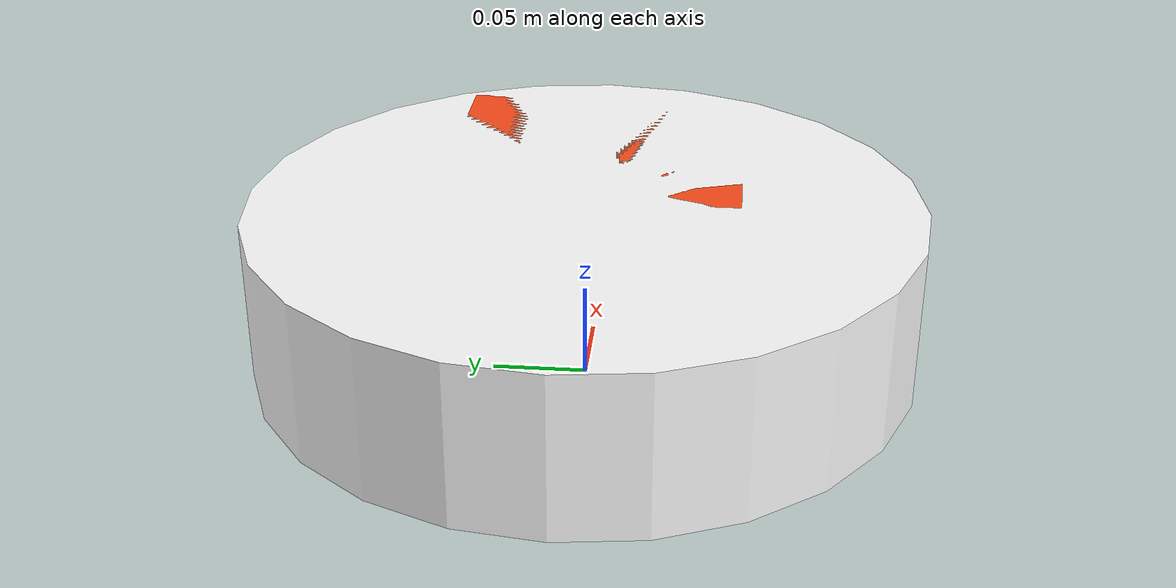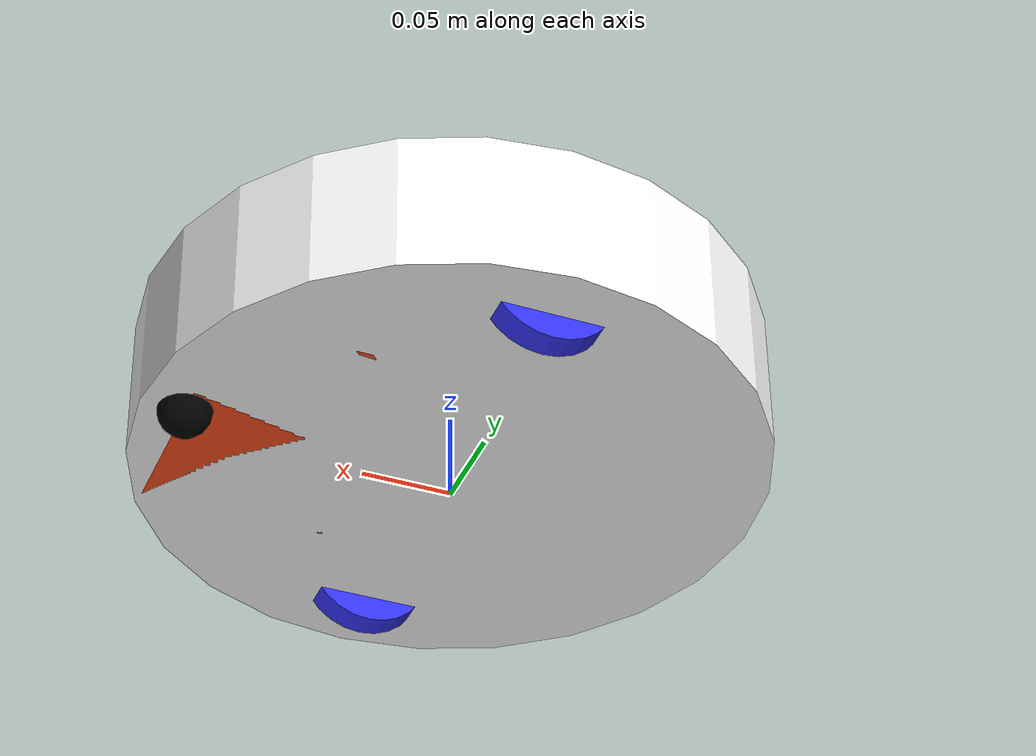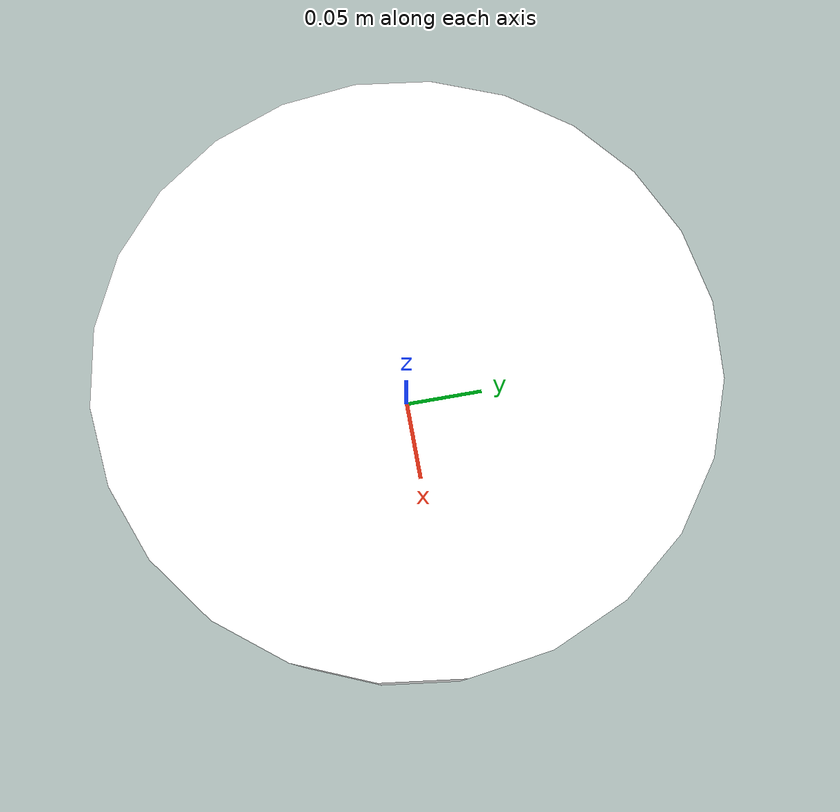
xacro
<?xml version="1.0"?>
<robot xmlns:xacro="http://www.ros.org/wiki/xacro" >

    <xacro:include filename="inertial_macros.xacro"/>

    <material name="white">
        <color rgba="1 1 1 1" />
    </material>
    <material name="orange">
        <color rgba="1 0.3 0.1 1" />
    </material>
    <material name="blue">
        <color rgba="0.2 0.2 1 1" />
    </material>
    <material name="black">
        <color rgba="0 0 0 1" />
    </material>
    <material name="red">
        <color rgba="1 0 0 1" />
    </material>

    <link name="base_footprint">
    </link>

    <!-- BASE  -->
    <joint name="base_joint" type="fixed">
        <parent link="base_footprint"/>
        <child link="base_link"/>
        <origin xyz="0 0 0.035" rpy="0 0 0"/>
    </joint>

    <link name="base_link">
    </link>

    <!-- CHASSIS ONE (CYLINDER) -->
    <joint name="chassis_one_joint" type="fixed">
        <parent link="base_link"/>
        <child link="chassis_one"/>
        <origin xyz="0 0 0.0225"/>
    </joint>

    <link name="chassis_one">
        <visual>
            <origin xyz="0 0 0"/>
            <geometry>
                <cylinder radius="0.175" length="0.085"/>
            </geometry>
            <material name="white"/>
        </visual>

        <collision>
            <origin xyz="0 0 0"/>
            <geometry>
                <cylinder radius="0.175" length="0.085"/>
            </geometry>
        </collision>

        <xacro:inertial_cylinder mass = "2.5" length="0.085" radius="0.175">
            <origin xyz="0 0 0" rpy="0 0 0"/>
        </xacro:inertial_cylinder>

    </link>

    <gazebo reference="chassis_one">
        <material>Gazebo/White</material>
    </gazebo>

    <!-- CHASSIS TWO (BOX) -->
    <joint name="chassis_two_joint" type="fixed">
        <parent link="base_link"/>
        <child link="chassis_two"/>
        <origin xyz="0 0 -0.02"/>
    </joint>

    <link name="chassis_two">
        <visual>
            <origin xyz="0.075 0 0.0425"/>
            <geometry>
                <box size="0.15 0.16 0.085"/>
            </geometry>
            <material name="orange"/>
        </visual>

        <collision>
            <origin xyz="0.075 0 0.0425"/>
            <geometry>
                <box size="0.15 0.16 0.085"/>
            </geometry>
        </collision>

        <xacro:inertial_box mass="1" x="0.15" y="0.16" z="0.085">
            <origin xyz="0.075 0 0.0425" rpy="0 0 0"/>
        </xacro:inertial_box>

    </link>

    <gazebo reference="chassis_two">
        <material>Gazebo/Orange</material>
    </gazebo>

    <!-- LEFT WHEEL -->
    <joint name="left_wheel_joint" type="continuous">
        <parent link="base_link"/>
        <child link="left_wheel"/>
        <origin xyz="0 0.1365 0" rpy="-${pi/2} 0 0"/>
        <axis xyz="0 0 1"/>
    </joint>

    <link name="left_wheel">
        <visual>
            <geometry>
                <cylinder radius="0.035" length="0.015"/>
            </geometry>
            <material name="blue"/>
        </visual>

        <collision>
            <geometry>
                <cylinder radius="0.035" length="0.015"/>
            </geometry>
        </collision>

        <xacro:inertial_cylinder mass = "0.1" length="0.015" radius="0.035">
            <origin xyz="0 0 0" rpy="0 0 0"/>
        </xacro:inertial_cylinder>

    </link>

    <gazebo reference="left_wheel">
        <material>Gazebo/Blue</material>
    </gazebo>

    <!-- RIGHT WHEEL -->
    <joint name="right_wheel_joint" type="continuous">
        <parent link="base_link"/>
        <child link="right_wheel"/>
        <origin xyz="0 -0.1365 0" rpy="${pi/2} 0 0"/>
        <axis xyz="0 0 -1"/>
    </joint>

    <link name="right_wheel">
        <visual>
            <geometry>
                <cylinder radius="0.035" length="0.015"/>
            </geometry>
            <material name="blue"/>
        </visual>

        <collision>
            <geometry>
                <cylinder radius="0.035" length="0.015"/>
            </geometry>
        </collision>

        <xacro:inertial_cylinder mass = "0.1" length="0.015" radius="0.035">
            <origin xyz="0 0 0" rpy="0 0 0"/>
        </xacro:inertial_cylinder>

    </link>

    <gazebo reference="right_wheel">
        <material>Gazebo/Blue</material>
    </gazebo>

    <!-- CASTER WHEEL -->
    <joint name="caster_wheel_joint" type="fixed">
        <parent link="chassis_two"/>
        <child link="caster_wheel"/>
        <origin xyz="0.15 0 0"/>
    </joint>

    <link name="caster_wheel">
        <visual>
            <geometry>
                <sphere radius="0.015"/>
            </geometry>
            <material name="black"/>
        </visual>

        <collision>
            <geometry>
                <sphere radius="0.015"/>
            </geometry>
        </collision>

        <xacro:inertial_sphere mass="0.1" radius="0.015">
            <origin xyz="0 0 0" rpy="0 0 0"/>
        </xacro:inertial_sphere>

    </link>

    <gazebo reference="caster_wheel">
        <material>Gazebo/Black</material>
        <mu1 value="0.001"/>
        <mu2 value="0.001"/>
    </gazebo>

</robot>
